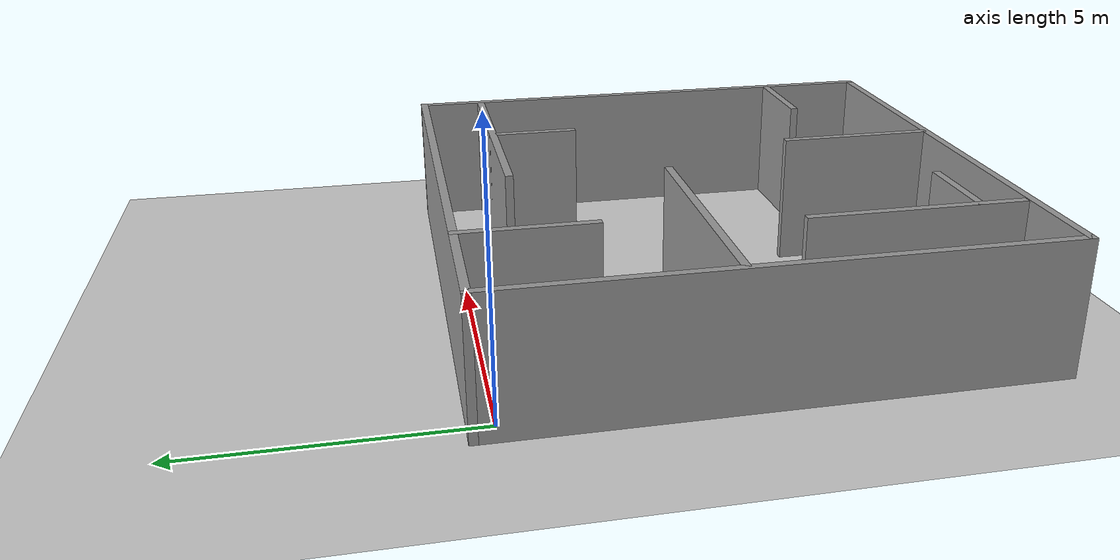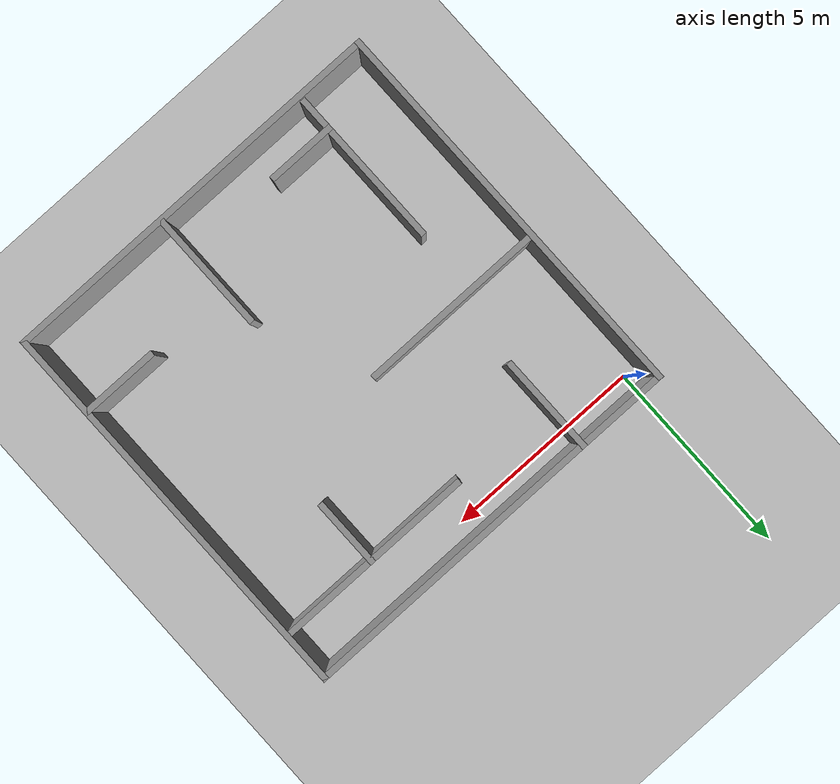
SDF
<sdf version="1.7">
 <world name="default">
  <scene><ambient>0.4 0.4 0.4 1</ambient><background>0.7 0.7 0.7 1</background><shadows>1</shadows></scene>
  <light name="sun" type="directional">
   <pose>0 0 10 0 -0 0</pose>
   <diffuse>0.8 0.8 0.8 1</diffuse>
   <specular>0.2 0.2 0.2 1</specular>
   <attenuation>
    <range>1000</range>
    <constant>0.9</constant>
    <linear>0.01</linear>
    <quadratic>0.001</quadratic>
   </attenuation>
   <direction>-0.5 0.1 -0.9</direction>
   <spot><inner_angle>0</inner_angle><outer_angle>0</outer_angle><falloff>0</falloff></spot>
  </light>
  <model name="ground_plane">
   <static>1</static>
   <link name="link">
    <collision name="collision">
     <geometry><plane><normal>0 0 1</normal><size>100 100</size></plane></geometry>
     <surface><friction><ode><mu>100</mu><mu2>50</mu2></ode></friction></surface>
    </collision>
    <visual name="visual">
     <cast_shadows>0</cast_shadows>
     <geometry><plane><normal>0 0 1</normal><size>100 100</size></plane></geometry>
     <material>
      <script><uri>file://media/materials/scripts/gazebo.material</uri><name>Gazebo/Grey</name></script>
     </material>
    </visual>
   </link>
  </model>
  <physics type="ode">
   <real_time_update_rate>1000</real_time_update_rate>
   <max_step_size>0.001</max_step_size>
   <real_time_factor>1</real_time_factor>
   <ode>
    <solver>
     <type>quick</type>
     <iters>150</iters>
     <precon_iters>0</precon_iters>
     <sor>1.4</sor>
     <use_dynamic_moi_rescaling>1</use_dynamic_moi_rescaling>
    </solver>
    <constraints>
     <cfm>1e-05</cfm>
     <erp>0.2</erp>
     <contact_max_correcting_vel>2000</contact_max_correcting_vel>
     <contact_surface_layer>0.01</contact_surface_layer>
    </constraints>
   </ode>
  </physics>
  <gravity>0 0 -9.8</gravity>
  <magnetic_field>6e-06 2.3e-05 -4.2e-05</magnetic_field>
  <atmosphere type="adiabatic"/>
  <spherical_coordinates>
   <surface_model>EARTH_WGS84</surface_model>
   <latitude_deg>0</latitude_deg>
   <longitude_deg>0</longitude_deg>
   <elevation>0</elevation>
   <heading_deg>0</heading_deg>
  </spherical_coordinates>
  <model name="simulation_map">
   <pose>-5.12487 -2.68949 0 0 -0 0</pose>
   <link name="Wall_10">
    <collision name="Wall_10_Collision">
     <geometry><box><size>10 0.15 2.5</size></box></geometry>
     <pose>0 0 1.25 0 -0 0</pose>
    </collision>
    <visual name="Wall_10_Visual">
     <pose>0 0 1.25 0 -0 0</pose>
     <geometry><box><size>10 0.15 2.5</size></box></geometry>
     <material>
      <script><uri>file://media/materials/scripts/gazebo.material</uri><name>Gazebo/Grey</name></script>
      <ambient>1 1 1 1</ambient>
     </material>
     <meta><layer>0</layer></meta>
    </visual>
    <pose>4.73006 -1.84726 0 0 -0 -1.5708</pose>
   </link>
   <link name="Wall_11">
    <collision name="Wall_11_Collision">
     <geometry><box><size>10 0.15 2.5</size></box></geometry>
     <pose>0 0 1.25 0 -0 0</pose>
    </collision>
    <visual name="Wall_11_Visual">
     <pose>0 0 1.25 0 -0 0</pose>
     <geometry><box><size>10 0.15 2.5</size></box></geometry>
     <material>
      <script><uri>file://media/materials/scripts/gazebo.material</uri><name>Gazebo/Grey</name></script>
      <ambient>1 1 1 1</ambient>
     </material>
     <meta><layer>0</layer></meta>
    </visual>
    <pose>9.65506 -6.77226 0 0 -0 0</pose>
   </link>
   <link name="Wall_12">
    <collision name="Wall_12_Collision">
     <geometry><box><size>10 0.15 2.5</size></box></geometry>
     <pose>0 0 1.25 0 -0 0</pose>
    </collision>
    <visual name="Wall_12_Visual">
     <pose>0 0 1.25 0 -0 0</pose>
     <geometry><box><size>10 0.15 2.5</size></box></geometry>
     <material>
      <script><uri>file://media/materials/scripts/gazebo.material</uri><name>Gazebo/Grey</name></script>
      <ambient>1 1 1 1</ambient>
     </material>
     <meta><layer>0</layer></meta>
    </visual>
    <pose>14.5801 -1.84726 0 0 -0 1.5708</pose>
   </link>
   <link name="Wall_15">
    <collision name="Wall_15_Collision">
     <geometry><box><size>2.5 0.15 2.5</size></box></geometry>
     <pose>0 0 1.25 0 -0 0</pose>
    </collision>
    <visual name="Wall_15_Visual">
     <pose>0 0 1.25 0 -0 0</pose>
     <geometry><box><size>2.5 0.15 2.5</size></box></geometry>
     <material>
      <script><uri>file://media/materials/scripts/gazebo.material</uri><name>Gazebo/Grey</name></script>
      <ambient>1 1 1 1</ambient>
     </material>
     <meta><layer>0</layer></meta>
    </visual>
    <pose>6.97844 1.89962 0 0 -0 -1.5708</pose>
   </link>
   <link name="Wall_17">
    <collision name="Wall_17_Collision">
     <geometry><box><size>4.75 0.15 2.5</size></box></geometry>
     <pose>0 0 1.25 0 -0 0</pose>
    </collision>
    <visual name="Wall_17_Visual">
     <pose>0 0 1.25 0 -0 0</pose>
     <geometry><box><size>4.75 0.15 2.5</size></box></geometry>
     <material>
      <script><uri>file://media/materials/scripts/gazebo.material</uri><name>Gazebo/Grey</name></script>
      <ambient>1 1 1 1</ambient>
     </material>
     <meta><layer>0</layer></meta>
    </visual>
    <pose>7.04583 -1.08889 0 0 -0 0</pose>
   </link>
   <link name="Wall_31">
    <collision name="Wall_31_Collision">
     <geometry><box><size>5 0.15 2.5</size></box></geometry>
     <pose>0 0 1.25 0 -0 0</pose>
    </collision>
    <visual name="Wall_31_Visual">
     <pose>0 0 1.25 0 -0 0</pose>
     <geometry><box><size>5 0.15 2.5</size></box></geometry>
     <material>
      <script><uri>file://media/materials/scripts/gazebo.material</uri><name>Gazebo/Grey</name></script>
      <ambient>1 1 1 1</ambient>
     </material>
     <meta><layer>0</layer></meta>
    </visual>
    <pose>12.0072 1.85822 0 0 -0 0</pose>
   </link>
   <link name="Wall_33">
    <collision name="Wall_33_Collision">
     <geometry><box><size>1.75 0.15 2.5</size></box></geometry>
     <pose>0 0 1.25 0 -0 0</pose>
    </collision>
    <visual name="Wall_33_Visual">
     <pose>0 0 1.25 0 -0 0</pose>
     <geometry><box><size>1.75 0.15 2.5</size></box></geometry>
     <material>
      <script><uri>file://media/materials/scripts/gazebo.material</uri><name>Gazebo/Grey</name></script>
      <ambient>1 1 1 1</ambient>
     </material>
     <meta><layer>0</layer></meta>
    </visual>
    <pose>12.1151 1.05822 0 0 -0 -1.5708</pose>
   </link>
   <link name="Wall_35">
    <collision name="Wall_35_Collision">
     <geometry><box><size>4 0.15 2.5</size></box></geometry>
     <pose>0 0 1.25 0 -0 0</pose>
    </collision>
    <visual name="Wall_35_Visual">
     <pose>0 0 1.25 0 -0 0</pose>
     <geometry><box><size>4 0.15 2.5</size></box></geometry>
     <material>
      <script><uri>file://media/materials/scripts/gazebo.material</uri><name>Gazebo/Grey</name></script>
      <ambient>1 1 1 1</ambient>
     </material>
     <meta><layer>0</layer></meta>
    </visual>
    <pose>6.48649 -4.6752 0 0 -0 -1.5708</pose>
   </link>
   <link name="Wall_37">
    <collision name="Wall_37_Collision">
     <geometry><box><size>1.75 0.15 2.5</size></box></geometry>
     <pose>0 0 1.25 0 -0 0</pose>
    </collision>
    <visual name="Wall_37_Visual">
     <pose>0 0 1.25 0 -0 0</pose>
     <geometry><box><size>1.75 0.15 2.5</size></box></geometry>
     <material>
      <script><uri>file://media/materials/scripts/gazebo.material</uri><name>Gazebo/Grey</name></script>
      <ambient>1 1 1 1</ambient>
     </material>
     <meta><layer>0</layer></meta>
    </visual>
    <pose>7.28649 -5.81075 0 0 -0 0</pose>
   </link>
   <link name="Wall_39">
    <collision name="Wall_39_Collision">
     <geometry><box><size>3 0.15 2.5</size></box></geometry>
     <pose>0 0 1.25 0 -0 0</pose>
    </collision>
    <visual name="Wall_39_Visual">
     <pose>0 0 1.25 0 -0 0</pose>
     <geometry><box><size>3 0.15 2.5</size></box></geometry>
     <material>
      <script><uri>file://media/materials/scripts/gazebo.material</uri><name>Gazebo/Grey</name></script>
      <ambient>1 1 1 1</ambient>
     </material>
     <meta><layer>0</layer></meta>
    </visual>
    <pose>10.5672 -5.26574 0 0 -0 -1.5708</pose>
   </link>
   <link name="Wall_41">
    <collision name="Wall_41_Collision">
     <geometry><box><size>2 0.15 2.5</size></box></geometry>
     <pose>0 0 1.25 0 -0 0</pose>
    </collision>
    <visual name="Wall_41_Visual">
     <pose>0 0 1.25 0 -0 0</pose>
     <geometry><box><size>2 0.15 2.5</size></box></geometry>
     <material>
      <script><uri>file://media/materials/scripts/gazebo.material</uri><name>Gazebo/Grey</name></script>
      <ambient>1 1 1 1</ambient>
     </material>
     <meta><layer>0</layer></meta>
    </visual>
    <pose>13.6381 -4.72021 0 0 -0 0</pose>
   </link>
   <link name="Wall_8">
    <collision name="Wall_8_Collision">
     <geometry><box><size>10 0.15 2.5</size></box></geometry>
     <pose>0 0 1.25 0 -0 0</pose>
    </collision>
    <visual name="Wall_8_Visual">
     <pose>0 0 1.25 0 -0 0</pose>
     <geometry><box><size>10 0.15 2.5</size></box></geometry>
     <material>
      <script><uri>file://media/materials/scripts/gazebo.material</uri><name>Gazebo/Grey</name></script>
      <ambient>1 1 1 1</ambient>
     </material>
     <meta><layer>0</layer></meta>
    </visual>
    <pose>9.65506 3.07774 0 0 -0 3.14159</pose>
   </link>
   <static>1</static>
  </model>
 </world>
</sdf>
